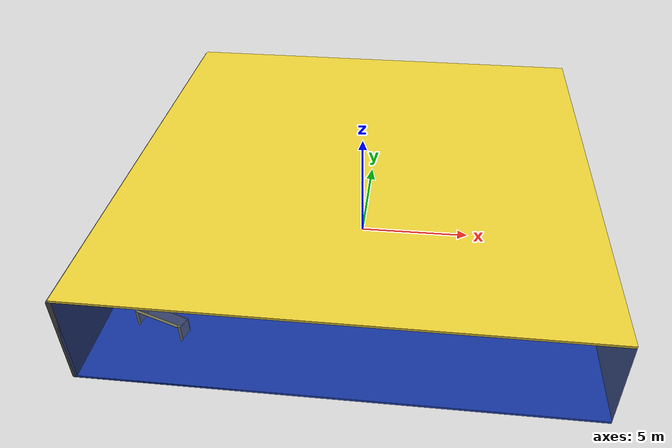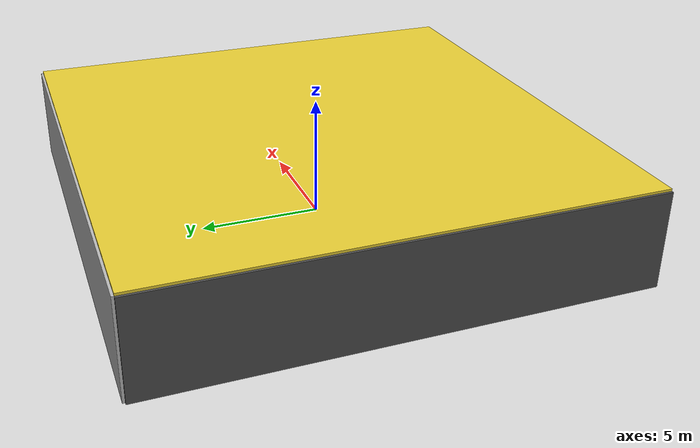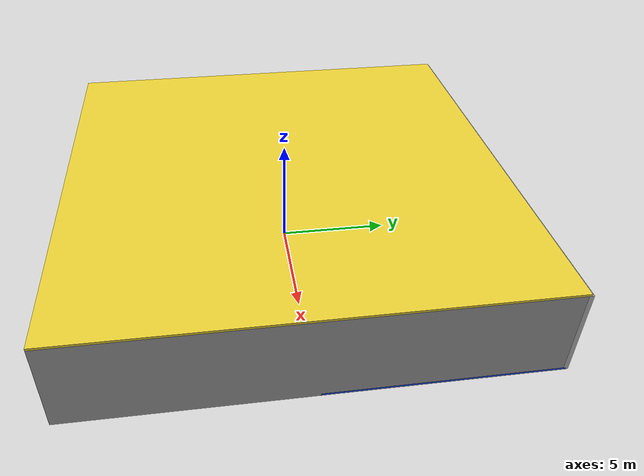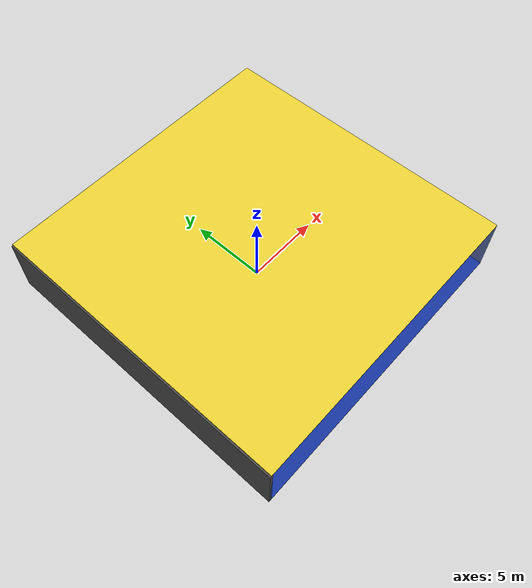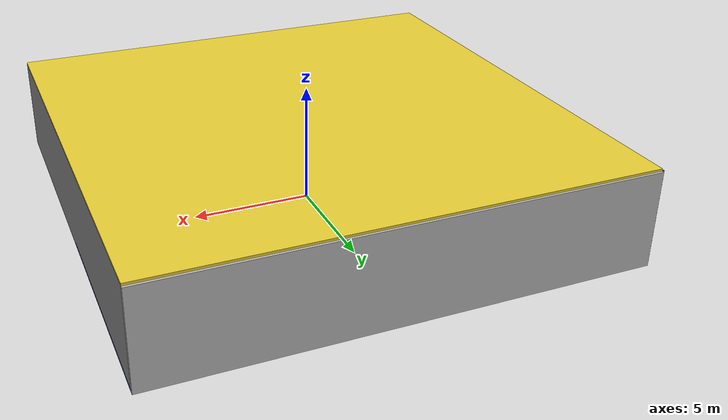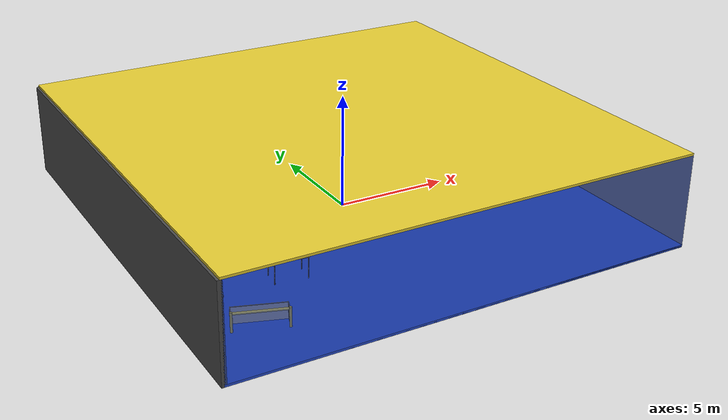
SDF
<sdf version="1.4">
 <world name="default">
  <physics type="ode">
   <max_step_size>0.001</max_step_size>
   <real_time_factor>1</real_time_factor>
   <real_time_update_rate>1000</real_time_update_rate>
   <gravity>0 0 -9.8</gravity>
  </physics>
  <scene><ambient>0.4 0.4 0.4 1</ambient><background>0.7 0.7 0.7 1</background><shadows>1</shadows></scene>
  <model name="Surrounding">
   <static>1</static>
   <link name="Ceiling">
    <collision name="Ceiling_Collision"><geometry><box><size>20 20 0.1</size></box></geometry></collision>
    <visual name="Ceiling_Visual">
     <geometry><box><size>20 20 0.1</size></box></geometry>
     <material>
      <script><uri>file://media/materials/scripts/gazebo.material</uri><name>Gazebo/ZincYellow</name></script>
     </material>
    </visual>
    <pose>0 0 4.05 0 0 0</pose>
   </link>
   <link name="Wall_South">
    <collision name="Wall_South_Collision">
     <geometry><box><size>20 0 4</size></box></geometry>
     <pose>0 0 2 0 -0 0</pose>
    </collision>
    <visual name="Wall_South_Visual">
     <pose>0 0 2 0 -0 0</pose>
     <geometry><box><size>20 0 4</size></box></geometry>
     <material>
      <script><uri>file://media/materials/scripts/gazebo.material</uri><name>Gazebo/BlueTransparent</name></script>
     </material>
    </visual>
    <velocity_decay><linear>0</linear><angular>0</angular></velocity_decay>
    <pose>0 -10 0 0 -0 0</pose>
   </link>
   <link name="Wall_East">
    <collision name="Wall_21_Collision">
     <geometry><box><size>20 0 4</size></box></geometry>
     <pose>0 0 2 0 -0 0</pose>
    </collision>
    <visual name="Wall_21_Visual">
     <pose>0 0 2 0 -0 0</pose>
     <geometry><box><size>20 0 4</size></box></geometry>
     <material>
      <script><uri>file://media/materials/scripts/gazebo.material</uri><name>Gazebo/GreyGradientSky</name></script>
     </material>
    </visual>
    <velocity_decay><linear>0</linear><angular>0</angular></velocity_decay>
    <pose>10 0 0 0 -0 1.5708</pose>
   </link>
   <link name="Wall_North">
    <collision name="Wall_22_Collision">
     <geometry><box><size>20 0.2 4</size></box></geometry>
     <pose>0 0 2 0 -0 0</pose>
    </collision>
    <visual name="Wall_22_Visual">
     <pose>0 0 2 0 -0 0</pose>
     <geometry><box><size>20 0.2 4</size></box></geometry>
     <material>
      <script><uri>file://media/materials/scripts/gazebo.material</uri><name>Gazebo/CloudySky</name></script>
     </material>
    </visual>
    <velocity_decay><linear>0</linear><angular>0</angular></velocity_decay>
    <pose>0 10 0 0 -0 0</pose>
   </link>
   <link name="Wall_West">
    <collision name="Wall_23_Collision">
     <geometry><box><size>20 0.2 4</size></box></geometry>
     <pose>0 0 2 0 -0 0</pose>
    </collision>
    <visual name="Wall_23_Visual">
     <pose>0 0 2 0 -0 0</pose>
     <geometry><box><size>20 0.2 4</size></box></geometry>
     <material>
      <script><uri>file://media/materials/scripts/gazebo.material</uri><name>Gazebo/Road</name></script>
     </material>
    </visual>
    <velocity_decay><linear>0</linear><angular>0</angular></velocity_decay>
    <pose>-10 0 0 0 0 -1.5708</pose>
   </link>
   <link name="Ground_link">
    <collision name="collision">
     <pose>0 0 .05 0 -0 0</pose>
     <geometry><box><size>20 20 0.1</size></box></geometry>
    </collision>
    <visual name="visual">
     <pose>0 0 .05 0 -0 0</pose>
     <geometry><box><size>20 20 0.1</size></box></geometry>
     <material>
      <script><uri>file://media/materials/scripts/gazebo.material</uri><name>Gazebo/Blue</name></script>
     </material>
    </visual>
   </link>
   <static>1</static>
  </model>
  <spherical_coordinates>
   <surface_model>EARTH_WGS84</surface_model>
   <latitude_deg>0</latitude_deg>
   <longitude_deg>0</longitude_deg>
   <elevation>0</elevation>
   <heading_deg>0</heading_deg>
  </spherical_coordinates>
  <light name="lightball_0" type="diffuse">
   <diffuse>0.8 0.8 0.8 1</diffuse>
   <specular>0.2 0.2 0.2 1</specular>
   <attenuation>
    <range>100</range>
    <constant>0.7</constant>
    <linear>0.01</linear>
    <quadratic>0.001</quadratic>
   </attenuation>
   <direction>-0.5 0.1 -0.9</direction>
   <pose>-5.19288245738 -8.35500964776 1.63083412599 0 0 0</pose>
  </light>
  <light name="lightball_1" type="diffuse">
   <diffuse>0.8 0.8 0.8 1</diffuse>
   <specular>0.2 0.2 0.2 1</specular>
   <attenuation>
    <range>100</range>
    <constant>0.7</constant>
    <linear>0.01</linear>
    <quadratic>0.001</quadratic>
   </attenuation>
   <direction>-0.5 0.1 -0.9</direction>
   <pose>-5.22894874189 6.94489148903 2.52395050486 0 0 0</pose>
  </light>
  <light name="lightball_2" type="diffuse">
   <diffuse>0.8 0.8 0.8 1</diffuse>
   <specular>0.2 0.2 0.2 1</specular>
   <attenuation>
    <range>100</range>
    <constant>0.7</constant>
    <linear>0.01</linear>
    <quadratic>0.001</quadratic>
   </attenuation>
   <direction>-0.5 0.1 -0.9</direction>
   <pose>-9.17455709672 -4.88686338993 2.16482771595 0 0 0</pose>
  </light>
  <light name="lightball_3" type="diffuse">
   <diffuse>0.8 0.8 0.8 1</diffuse>
   <specular>0.2 0.2 0.2 1</specular>
   <attenuation>
    <range>100</range>
    <constant>0.7</constant>
    <linear>0.01</linear>
    <quadratic>0.001</quadratic>
   </attenuation>
   <direction>-0.5 0.1 -0.9</direction>
   <pose>-5.44919420741 -4.56282449175 1.26262144798 0 0 0</pose>
  </light>
  <light name="lightball_4" type="diffuse">
   <diffuse>0.8 0.8 0.8 1</diffuse>
   <specular>0.2 0.2 0.2 1</specular>
   <attenuation>
    <range>100</range>
    <constant>0.7</constant>
    <linear>0.01</linear>
    <quadratic>0.001</quadratic>
   </attenuation>
   <direction>-0.5 0.1 -0.9</direction>
   <pose>-6.32610719532 -5.10078648505 3.7948718312 0 0 0</pose>
  </light>
  <include>
   <uri>model://robocup_3Dsim_goal</uri>
   <pose>-7.47980145683 -7.52121034134 0 0 0 1.2433042476</pose>
  </include>
  <include>
   <uri>model://construction_cone</uri>
   <pose>-7.87431939478 -4.73169401702 0 0 0 2.57446377755</pose>
  </include>
  <include><uri>model://cabinet</uri><pose>-7.33997904246 2.05183870186 0 0 0 2.34979780372</pose></include>
  <include><uri>model://table</uri><pose>-7.27118008658 8.11405344704 0 0 0 2.99129499091</pose></include>
  <include><uri>model://table</uri><pose>-4.94847197793 -4.62020420668 0 0 0 3.02114613886</pose></include>
  <include><uri>model://table</uri><pose>2.07662827299 4.81903970009 0 0 0 0.0847916523692</pose></include>
  <include>
   <uri>model://robocup_3Dsim_goal</uri>
   <pose>4.04332006907 4.96264738493 0 0 0 0.622129035016</pose>
  </include>
 </world>
</sdf>

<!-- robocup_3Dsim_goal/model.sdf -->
<sdf version="1.5">
  <model name="robocup_3d_goal">
    <static>true</static>
    <link name="left_post">
      <pose>0 1.05 0.45 0 0 0</pose>
      <collision name="collision">
        <geometry>
          <cylinder>
            <radius>0.05</radius>
            <length>0.9</length>
          </cylinder>
        </geometry>
      </collision>
      <visual name="visual">
        <geometry>
          <cylinder>
            <radius>0.05</radius>
            <length>0.9</length>
          </cylinder>
        </geometry>
        <material>
          <script>
            <uri>file://media/materials/scripts/gazebo.material</uri>
            <name>Gazebo/ZincYellow</name>
          </script>
        </material>
      </visual>
    </link>
    <link name="left_support_horiz_lower">
      <pose>0.30 1.05 0.01 0 0 0</pose>
      <collision name="collision">
        <geometry>
          <box>
            <size>0.50 0.02 0.02</size>
          </box>
        </geometry>
      </collision>
      <visual name="visual">
        <geometry>
          <box>
            <size>0.50 0.02 0.02</size>
          </box>
        </geometry>
        <material>
          <script>
            <uri>file://media/materials/scripts/gazebo.material</uri>
            <name>Gazebo/White</name>
          </script>
        </material>
      </visual>
    </link>
    <link name="left_support_horiz_upper">
      <pose>0.30 1.05 0.79 0 0 0</pose>
      <collision name="collision">
        <geometry>
          <box>
            <size>0.50 0.02 0.02</size>
          </box>
        </geometry>
      </collision>
      <visual name="visual">
        <geometry>
          <box>
            <size>0.50 0.02 0.02</size>
          </box>
        </geometry>
        <material>
          <script>
            <uri>file://media/materials/scripts/gazebo.material</uri>
            <name>Gazebo/White</name>
          </script>
        </material>
      </visual>
    </link>
    <link name="left_support_vertical">
      <pose>0.56 1.05 0.4 0 1.5708 0</pose>
      <collision name="collision">
        <geometry>
          <box>
            <size>0.80 0.02 0.02</size>
          </box>
        </geometry>
      </collision>
      <visual name="visual">
        <geometry>
          <box>
            <size>0.80 0.02 0.02</size>
          </box>
        </geometry>
        <material>
          <script>
            <uri>file://media/materials/scripts/gazebo.material</uri>
            <name>Gazebo/White</name>
          </script>
        </material>
      </visual>
    </link>
    <link name="right_support_horiz_lower">
      <pose>0.30 -1.05 0.01 0 0 0</pose>
      <collision name="collision">
        <geometry>
          <box>
            <size>0.50 0.02 0.02</size>
          </box>
        </geometry>
      </collision>
      <visual name="visual">
        <geometry>
          <box>
            <size>0.50 0.02 0.02</size>
          </box>
        </geometry>
        <material>
          <script>
            <uri>file://media/materials/scripts/gazebo.material</uri>
            <name>Gazebo/White</name>
          </script>
        </material>
      </visual>
    </link>
    <link name="right_support_horiz_upper">
      <pose>0.30 -1.05 0.79 0 0 0</pose>
      <collision name="collision">
        <geometry>
          <box>
            <size>0.50 0.02 0.02</size>
          </box>
        </geometry>
      </collision>
      <visual name="visual">
        <geometry>
          <box>
            <size>0.50 0.02 0.02</size>
          </box>
        </geometry>
        <material>
          <script>
            <uri>file://media/materials/scripts/gazebo.material</uri>
            <name>Gazebo/White</name>
          </script>
        </material>
      </visual>
    </link>
    <link name="right_support_vertical">
      <pose>0.56 -1.05 0.4 0 1.5708 0</pose>
      <collision name="collision">
        <geometry>
          <box>
            <size>0.80 0.02 0.02</size>
          </box>
        </geometry>
      </collision>
      <visual name="visual">
        <geometry>
          <box>
            <size>0.80 0.02 0.02</size>
          </box>
        </geometry>
        <material>
          <script>
            <uri>file://media/materials/scripts/gazebo.material</uri>
            <name>Gazebo/White</name>
          </script>
        </material>
      </visual>
    </link>
    <link name="center_support_horiz_lower">
      <pose>0.56 0 0.01 0 1.5708 0</pose>
      <collision name="collision">
        <geometry>
          <box>
            <size>0.02 2.08 0.02</size>
          </box>
        </geometry>
      </collision>
      <visual name="visual">
        <geometry>
          <box>
            <size>0.02 2.08 0.02</size>
          </box>
        </geometry>
        <material>
          <script>
            <uri>file://media/materials/scripts/gazebo.material</uri>
            <name>Gazebo/White</name>
          </script>
        </material>
      </visual>
    </link>
    <link name="center_support_horiz_upper">
      <pose>0.56 0 0.79 0 1.5708 0</pose>
      <collision name="collision">
        <geometry>
          <box>
            <size>0.02 2.08 0.02</size>
          </box>
        </geometry>
      </collision>
      <visual name="visual">
        <geometry>
          <box>
            <size>0.02 2.08 0.02</size>
          </box>
        </geometry>
        <material>
          <script>
            <uri>file://media/materials/scripts/gazebo.material</uri>
            <name>Gazebo/White</name>
          </script>
        </material>
      </visual>
    </link>
    <link name="right_post">
      <pose>0 -1.05 0.45 0 0 0</pose>
      <collision name="collision">
        <geometry>
          <cylinder>
            <radius>0.05</radius>
            <length>0.9</length>
          </cylinder>
        </geometry>
      </collision>
      <visual name="visual">
        <geometry>
          <cylinder>
            <radius>0.05</radius>
            <length>0.9</length>
          </cylinder>
        </geometry>
        <material>
          <script>
            <uri>file://media/materials/scripts/gazebo.material</uri>
            <name>Gazebo/ZincYellow</name>
          </script>
        </material>
      </visual>
    </link>
    <link name="crossbar">
      <pose>0 0 0.85 1.57 1.57 0</pose>
      <collision name="collision">
        <geometry>
          <cylinder>
            <radius>0.05</radius>
            <length>2.0</length>
          </cylinder>
        </geometry>
      </collision>
      <visual name="visual">
        <geometry>
          <cylinder>
            <radius>0.05</radius>
            <length>2.0</length>
          </cylinder>
        </geometry>
        <material>
          <script>
            <uri>file://media/materials/scripts/gazebo.material</uri>
            <name>Gazebo/ZincYellow</name>
          </script>
        </material>
      </visual>
    </link>
    <link name="center_net">
      <pose>0.56 0 0.40 0 0 0</pose>
      <collision name="collision">
        <geometry>
          <box>
            <size>0.01 2.1 0.80</size>
          </box>
        </geometry>
      </collision>
      <visual name="visual">
        <geometry>
          <box>
            <size>0.01 2.1 0.80</size>
          </box>
        </geometry>
        <material>
          <script>
            <uri>model://../model_source/models/robocup09_spl_field/materials/scripts/</uri>
            <uri>model://../model_source/models/robocup09_spl_field/materials/textures/</uri>
            <name>RoboCup/Net</name>
          </script>
        </material>
      </visual>
    </link>
    <link name="left_net">
      <pose>0.30 1.05 0.40 0 0 0</pose>
      <collision name="collision">
        <geometry>
          <box>
            <size>0.50 0.01 0.76</size>
          </box>
        </geometry>
      </collision>
      <visual name="visual">
        <geometry>
          <box>
            <size>0.50 0.01 0.76</size>
          </box>
        </geometry>
        <material>
          <script>
            <uri>model://../model_source/models/robocup09_spl_field/materials/scripts/</uri>
            <uri>model://../model_source/models/robocup09_spl_field/materials/textures/</uri>
            <name>RoboCup/Net</name>
          </script>
        </material>
      </visual>
    </link>
    <link name="right_net">
      <pose>0.30 -1.05 0.40 0 0 0</pose>
      <collision name="collision">
        <geometry>
          <box>
            <size>0.50 0.01 0.76</size>
          </box>
        </geometry>
      </collision>
      <visual name="visual">
        <geometry>
          <box>
            <size>0.50 0.01 0.76</size>
          </box>
        </geometry>
        <material>
          <script>
            <uri>model://../model_source/models/robocup09_spl_field/materials/scripts/</uri>
            <uri>model://../model_source/models/robocup09_spl_field/materials/textures/</uri>
            <name>RoboCup/Net</name>
          </script>
        </material>
      </visual>
    </link>
  </model>
</sdf>

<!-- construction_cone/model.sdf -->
<sdf version="1.5">
  <model name="Construction Cone">
    <link name="link">
      <collision name="collision">
        <geometry>
          <mesh>
            <scale>10 10 10</scale>
            <uri>file://isr-testbed/construction_cone/meshes/construction_cone.dae</uri>
          </mesh>
        </geometry>
      </collision>
      <visual name="visual">
        <geometry>
          <mesh>
            <scale>10 10 10</scale>
            <uri>file://isr-testbed/construction_cone/meshes/construction_cone.dae</uri>
          </mesh>
        </geometry>
      </visual>
    </link>
  </model>
</sdf>

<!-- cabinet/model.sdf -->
<sdf version="1.5">
  <model name="cabinet">
    <static>true</static>
    <link name="cabinet_bottom_plate">
      <inertial>
        <pose>0 0 -1 0 0 0</pose>
        <inertia>
          <ixx>2.050000</ixx>
          <ixy>0</ixy>
          <ixz>0</ixz>
          <iyy>2.050000</iyy>
          <iyz>0</iyz>
          <izz>2.050000</izz>
        </inertia>
        <mass>25.000000</mass>
      </inertial>
      <collision name="cabinet_bottom_plate_geom">
        <pose>0 0 0.010000 0 0 0</pose>
        <geometry>
          <box>
            <size>0.450000 0.450000 0.020000</size>
          </box>
        </geometry>
      </collision>
      <visual name="cabinet_bottom_plate_geom_visual">
        <pose>0 0 0.010000 0 0 0</pose>
        <geometry>
          <box>
            <size>0.450000 0.450000 0.020000</size>
          </box>
        </geometry>
        <material>
          <script>
            <uri>model://media/materials/scripts/gazebo.material</uri>
            <name>Gazebo/Wood</name>
          </script>
        </material>
      </visual>
      <collision name="cabinet_bottom_plate_geom_cabinet_back_plate">
        <pose>0.235000 0 0.510000 0 0 0</pose>
        <geometry>
          <box>
            <size>0.020000 0.450000 1.020000</size>
          </box>
        </geometry>
      </collision>
      <visual name="cabinet_bottom_plate_geom_cabinet_back_plate_visual">
        <pose>0.235000 0 0.510000 0 0 0</pose>
        <geometry>
          <box>
            <size>0.020000 0.450000 1.020000</size>
          </box>
        </geometry>
        <material>
          <script>
            <uri>model://media/materials/scripts/gazebo.material</uri>
            <name>Gazebo/Wood</name>
          </script>
        </material>
      </visual>
      <collision name="cabinet_bottom_plate_geom_cabinet_left_plate">
        <pose>0 0.235000 0.510000 0 0 0</pose>
        <geometry>
          <box>
            <size>0.450000 0.020000 1.020000</size>
          </box>
        </geometry>
      </collision>
      <visual name="cabinet_bottom_plate_geom_cabinet_left_plate_visual">
        <pose>0 0.235000 0.510000 0 0 0</pose>
        <geometry>
          <box>
            <size>0.450000 0.020000 1.020000</size>
          </box>
        </geometry>
        <material>
          <script>
            <uri>model://media/materials/scripts/gazebo.material</uri>
            <name>Gazebo/Wood</name>
          </script>
        </material>
      </visual>
      <collision name="cabinet_bottom_plate_geom_cabinet_middle_plate">
        <pose>0 0 0.510000 0 0 0</pose>
        <geometry>
          <box>
            <size>0.450000 0.450000 0.020000</size>
          </box>
        </geometry>
      </collision>
      <visual name="cabinet_bottom_plate_geom_cabinet_middle_plate_visual">
        <pose>0 0 0.510000 0 0 0</pose>
        <geometry>
          <box>
            <size>0.450000 0.450000 0.020000</size>
          </box>
        </geometry>
        <material>
          <script>
            <uri>model://media/materials/scripts/gazebo.material</uri>
            <name>Gazebo/Wood</name>
          </script>
        </material>
      </visual>
      <collision name="cabinet_bottom_plate_geom_cabinet_right_plate">
        <pose>0 -0.235000 0.510000 0 0 0</pose>
        <geometry>
          <box>
            <size>0.450000 0.020000 1.020000</size>
          </box>
        </geometry>
      </collision>
      <visual name="cabinet_bottom_plate_geom_cabinet_right_plate_visual">
        <pose>0 -0.235000 0.510000 0 0 0</pose>
        <geometry>
          <box>
            <size>0.450000 0.020000 1.020000</size>
          </box>
        </geometry>
        <material>
          <script>
            <uri>model://media/materials/scripts/gazebo.material</uri>
            <name>Gazebo/Wood</name>
          </script>
        </material>
      </visual>
      <collision name="cabinet_bottom_plate_geom_cabinet_top_plate">
        <pose>0 0 1.010000 0 0 0</pose>
        <geometry>
          <box>
            <size>0.450000 0.450000 0.020000</size>
          </box>
        </geometry>
      </collision>
      <visual name="cabinet_bottom_plate_geom_cabinet_top_plate_visual">
        <pose>0 0 1.010000 0 0 0</pose>
        <geometry>
          <box>
            <size>0.450000 0.450000 0.020000</size>
          </box>
        </geometry>
        <material>
          <script>
            <uri>model://media/materials/scripts/gazebo.material</uri>
            <name>Gazebo/Wood</name>
          </script>
        </material>
      </visual>
    </link>
  </model>
</sdf>

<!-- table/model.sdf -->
<sdf version="1.5">
  <model name="table">
    <static>true</static>
    <link name="link">
      <collision name="surface">
        <pose>0 0 1.0 0 0 0</pose>
        <geometry>
          <box>
            <size>1.5 0.8 0.03</size>
          </box>
        </geometry>
        <surface>
          <friction>
            <ode>
              <mu>0.6</mu>
              <mu2>0.6</mu2>
            </ode>
          </friction>
        </surface>
      </collision>
      <visual name="visual1">
        <pose>0 0 1.0 0 0 0</pose>
        <geometry>
          <box>
            <size>1.5 0.8 0.03</size>
          </box>
        </geometry>
        <material>
          <script>
            <uri>model://media/materials/scripts/gazebo.material</uri>
            <name>Gazebo/Wood</name>
          </script>
        </material>
      </visual>
      <collision name="front_left_leg">
        <pose>0.68 0.38 0.5 0 0 0</pose>
        <geometry>
          <cylinder>
            <radius>0.02</radius>
            <length>1.0</length>
          </cylinder>
        </geometry>
      </collision>
      <visual name="front_left_leg">
        <pose>0.68 0.38 0.5 0 0 0</pose>
        <geometry>
          <cylinder>
            <radius>0.02</radius>
            <length>1.0</length>
          </cylinder>
        </geometry>
        <material>
          <script>
            <uri>model://media/materials/scripts/gazebo.material</uri>
            <name>Gazebo/Grey</name>
          </script>
        </material>
      </visual>
      <collision name="front_right_leg">
        <pose>0.68 -0.38 0.5 0 0 0</pose>
        <geometry>
          <cylinder>
            <radius>0.02</radius>
            <length>1.0</length>
          </cylinder>
        </geometry>
      </collision>
      <visual name="front_right_leg">
        <pose>0.68 -0.38 0.5 0 0 0</pose>
        <geometry>
          <cylinder>
            <radius>0.02</radius>
            <length>1.0</length>
          </cylinder>
        </geometry>
        <material>
          <script>
            <uri>model://media/materials/scripts/gazebo.material</uri>
            <name>Gazebo/Grey</name>
          </script>
        </material>
      </visual>
      <collision name="back_right_leg">
        <pose>-0.68 -0.38 0.5 0 0 0</pose>
        <geometry>
          <cylinder>
            <radius>0.02</radius>
            <length>1.0</length>
          </cylinder>
        </geometry>
      </collision>
      <visual name="back_right_leg">
        <pose>-0.68 -0.38 0.5 0 0 0</pose>
        <geometry>
          <cylinder>
            <radius>0.02</radius>
            <length>1.0</length>
          </cylinder>
        </geometry>
        <material>
          <script>
            <uri>model://media/materials/scripts/gazebo.material</uri>
            <name>Gazebo/Grey</name>
          </script>
        </material>
      </visual>
      <collision name="back_left_leg">
        <pose>-0.68 0.38 0.5 0 0 0</pose>
        <geometry>
          <cylinder>
            <radius>0.02</radius>
            <length>1.0</length>
          </cylinder>
        </geometry>
      </collision>
      <visual name="back_left_leg">
        <pose>-0.68 0.38 0.5 0 0 0</pose>
        <geometry>
          <cylinder>
            <radius>0.02</radius>
            <length>1.0</length>
          </cylinder>
        </geometry>
        <material>
          <script>
            <uri>model://media/materials/scripts/gazebo.material</uri>
            <name>Gazebo/Grey</name>
          </script>
        </material>
      </visual>
    </link>
  </model>
</sdf>
